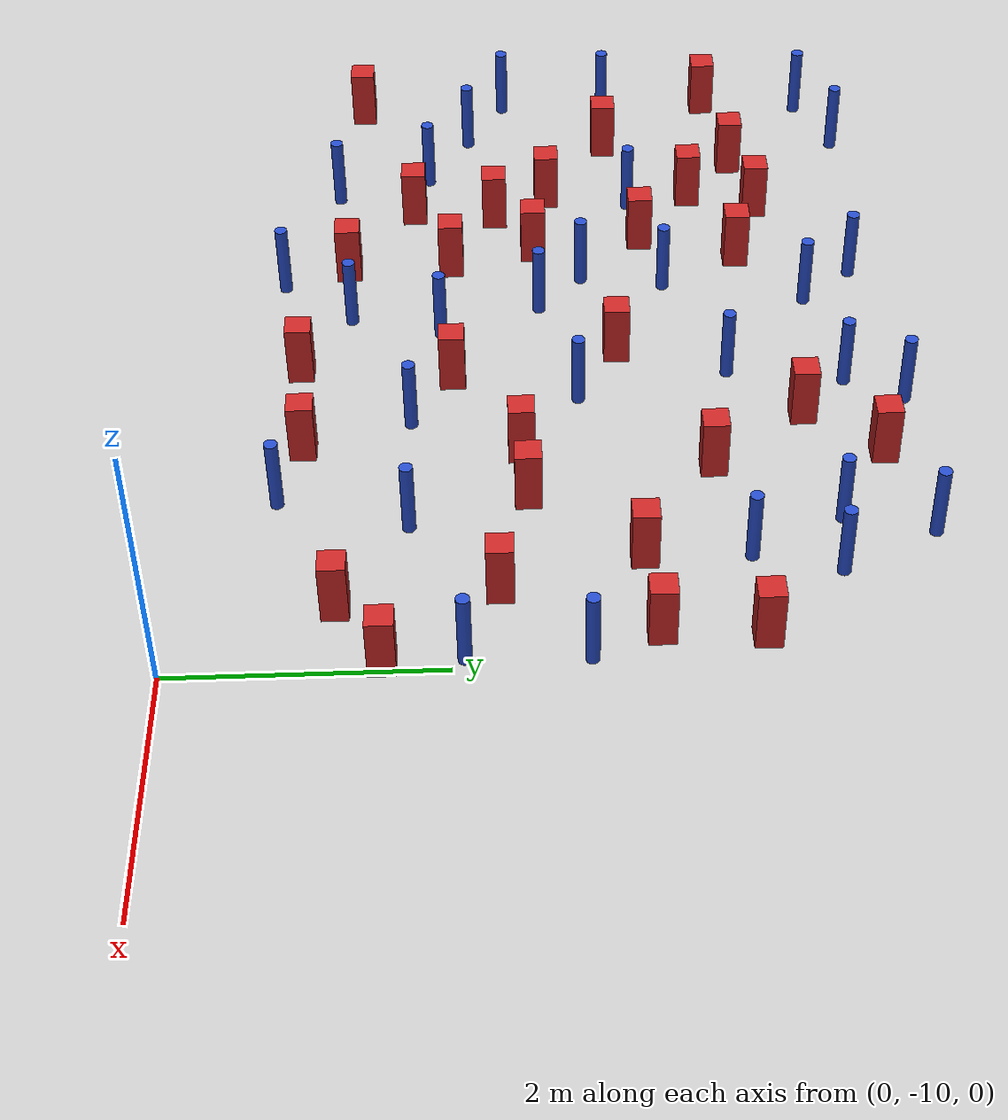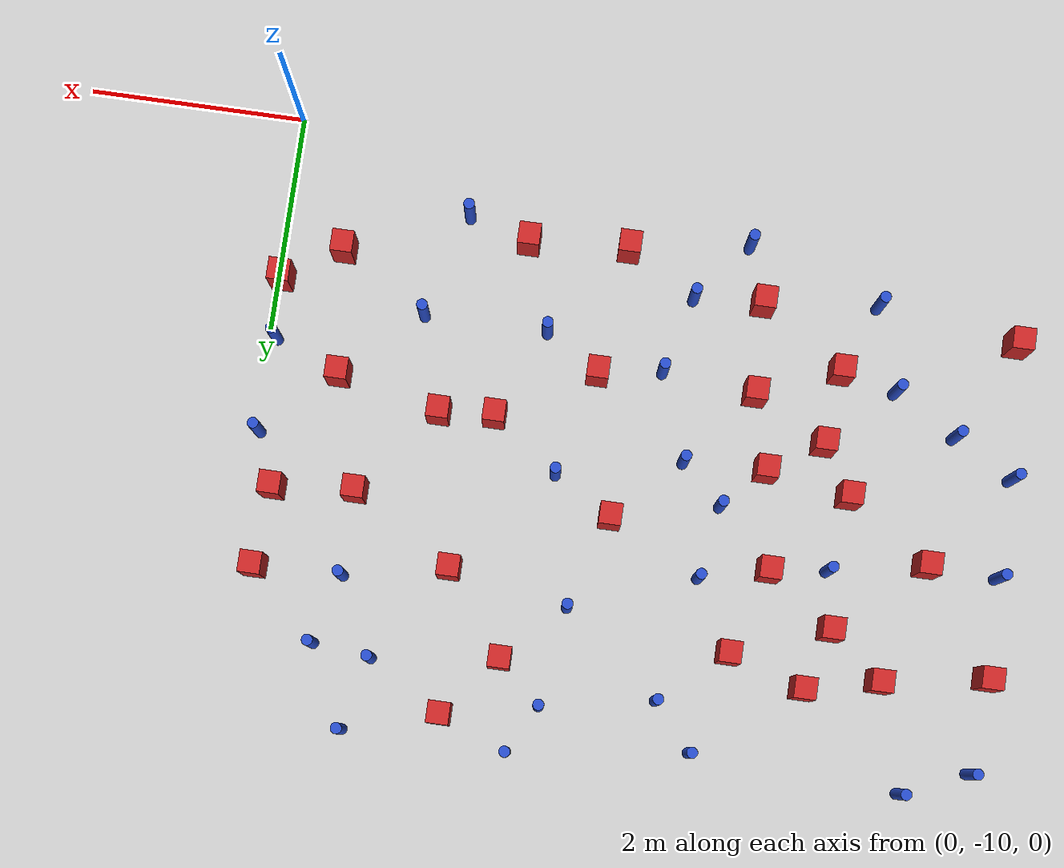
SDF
<sdf version="1.6">
 <world name="default">
  <model name="ground_plane">
   <static>1</static>
   <link name="link">
    <collision name="collision">
     <geometry><plane><normal>0 0 1</normal><size>100 100</size></plane></geometry>
     <surface><friction><ode><mu>100</mu><mu2>50</mu2></ode></friction></surface>
    </collision>
    <visual name="visual">
     <cast_shadows>0</cast_shadows>
     <geometry><plane><normal>0 0 1</normal><size>100 100</size></plane></geometry>
     <material>
      <ambient>1.0 1.0 1.0 1.0</ambient>
      <diffuse>0.8 0.8 0.8 1.0</diffuse>
      <specular>0.01 0.01 0.01 1.000000</specular>
     </material>
    </visual>
   </link>
  </model>
  <model name="square_post_obstacle4">
   <static>true</static>
   <pose>-4.4408581253 -8.84156580716 -6.11067671241e-07 -5.50515727128e-06 -8.79689657224e-07 2.37013304536e-05</pose>
   <link name="link">
    <pose>0 0 0.25 0 -0 0</pose>
    <inertial>
     <mass>100</mass>
     <inertia>
      <ixx>0.166667</ixx>
      <ixy>0</ixy>
      <ixz>0</ixz>
      <iyy>0.166667</iyy>
      <iyz>0</iyz>
      <izz>0.166667</izz>
     </inertia>
    </inertial>
    <collision name="collision"><geometry><box><size>.2 .2 .5</size></box></geometry></collision>
    <visual name="visual">
     <geometry><box><size>.2 .2 .5</size></box></geometry>
     <material>
      <script><name>Gazebo/Red</name><uri>file://media/materials/scripts/gazebo.material</uri></script>
     </material>
    </visual>
   </link>
  </model>
  <model name="pole_obstacle6">
   <static>true</static>
   <pose>-2.67955490322 -4.49456968489 -9.47619616065e-06 5.49618799738e-07 2.3631041406e-07 -1.55090534801e-07</pose>
   <link name="link">
    <pose>0 0 0.3 0 -0 0</pose>
    <inertial>
     <mass>1</mass>
     <inertia><ixx>0.145833</ixx><ixy>0</ixy><ixz>0</ixz><iyy>0.145833</iyy><iyz>0</iyz><izz>0.125</izz></inertia>
    </inertial>
    <collision name="collision">
     <geometry><cylinder><radius>0.05</radius><length>.6</length></cylinder></geometry>
    </collision>
    <visual name="visual">
     <geometry><cylinder><radius>0.05</radius><length>.6</length></cylinder></geometry>
     <material>
      <script><name>Gazebo/Blue</name><uri>file://media/materials/scripts/gazebo.material</uri></script>
     </material>
    </visual>
   </link>
  </model>
  <model name="square_post_obstacle14">
   <static>true</static>
   <pose>-5.88535612797 -5.571079546 -6.11067671241e-07 -5.50515727128e-06 -8.79689657224e-07 2.37013304536e-05</pose>
   <link name="link">
    <pose>0 0 0.25 0 -0 0</pose>
    <inertial>
     <mass>100</mass>
     <inertia>
      <ixx>0.166667</ixx>
      <ixy>0</ixy>
      <ixz>0</ixz>
      <iyy>0.166667</iyy>
      <iyz>0</iyz>
      <izz>0.166667</izz>
     </inertia>
    </inertial>
    <collision name="collision"><geometry><box><size>.2 .2 .5</size></box></geometry></collision>
    <visual name="visual">
     <geometry><box><size>.2 .2 .5</size></box></geometry>
     <material>
      <script><name>Gazebo/Red</name><uri>file://media/materials/scripts/gazebo.material</uri></script>
     </material>
    </visual>
   </link>
  </model>
  <model name="square_post_obstacle16">
   <static>true</static>
   <pose>-4.52722977021 -5.63745665215 -6.11067671241e-07 -5.50515727128e-06 -8.79689657224e-07 2.37013304536e-05</pose>
   <link name="link">
    <pose>0 0 0.25 0 -0 0</pose>
    <inertial>
     <mass>100</mass>
     <inertia>
      <ixx>0.166667</ixx>
      <ixy>0</ixy>
      <ixz>0</ixz>
      <iyy>0.166667</iyy>
      <iyz>0</iyz>
      <izz>0.166667</izz>
     </inertia>
    </inertial>
    <collision name="collision"><geometry><box><size>.2 .2 .5</size></box></geometry></collision>
    <visual name="visual">
     <geometry><box><size>.2 .2 .5</size></box></geometry>
     <material>
      <script><name>Gazebo/Red</name><uri>file://media/materials/scripts/gazebo.material</uri></script>
     </material>
    </visual>
   </link>
  </model>
  <model name="square_post_obstacle21">
   <static>true</static>
   <pose>-0.0513197047499 -8.47438045316 -6.11067671241e-07 -5.50515727128e-06 -8.79689657224e-07 2.37013304536e-05</pose>
   <link name="link">
    <pose>0 0 0.25 0 -0 0</pose>
    <inertial>
     <mass>100</mass>
     <inertia>
      <ixx>0.166667</ixx>
      <ixy>0</ixy>
      <ixz>0</ixz>
      <iyy>0.166667</iyy>
      <iyz>0</iyz>
      <izz>0.166667</izz>
     </inertia>
    </inertial>
    <collision name="collision"><geometry><box><size>.2 .2 .5</size></box></geometry></collision>
    <visual name="visual">
     <geometry><box><size>.2 .2 .5</size></box></geometry>
     <material>
      <script><name>Gazebo/Red</name><uri>file://media/materials/scripts/gazebo.material</uri></script>
     </material>
    </visual>
   </link>
  </model>
  <model name="square_post_obstacle22">
   <static>true</static>
   <pose>-5.42596364143 -7.18494212022 -6.11067671241e-07 -5.50515727128e-06 -8.79689657224e-07 2.37013304536e-05</pose>
   <link name="link">
    <pose>0 0 0.25 0 -0 0</pose>
    <inertial>
     <mass>100</mass>
     <inertia>
      <ixx>0.166667</ixx>
      <ixy>0</ixy>
      <ixz>0</ixz>
      <iyy>0.166667</iyy>
      <iyz>0</iyz>
      <izz>0.166667</izz>
     </inertia>
    </inertial>
    <collision name="collision"><geometry><box><size>.2 .2 .5</size></box></geometry></collision>
    <visual name="visual">
     <geometry><box><size>.2 .2 .5</size></box></geometry>
     <material>
      <script><name>Gazebo/Red</name><uri>file://media/materials/scripts/gazebo.material</uri></script>
     </material>
    </visual>
   </link>
  </model>
  <model name="pole_obstacle19">
   <static>true</static>
   <pose>-3.90889676823 -7.29016949241 -9.4761961606e-06 5.49618799729e-07 2.36310414006e-07 -1.55090534822e-07</pose>
   <link name="link">
    <pose>0 0 0.3 0 -0 0</pose>
    <inertial>
     <mass>1</mass>
     <inertia><ixx>0.145833</ixx><ixy>0</ixy><ixz>0</ixz><iyy>0.145833</iyy><iyz>0</iyz><izz>0.125</izz></inertia>
    </inertial>
    <collision name="collision">
     <geometry><cylinder><radius>0.05</radius><length>.6</length></cylinder></geometry>
    </collision>
    <visual name="visual">
     <geometry><cylinder><radius>0.05</radius><length>.6</length></cylinder></geometry>
     <material>
      <script><name>Gazebo/Blue</name><uri>file://media/materials/scripts/gazebo.material</uri></script>
     </material>
    </visual>
   </link>
  </model>
  <model name="pole_obstacle21">
   <static>true</static>
   <pose>-0.0601522836397 -7.04055698694 -9.47619616065e-06 5.49618799737e-07 2.36310414066e-07 -1.55090534798e-07</pose>
   <link name="link">
    <pose>0 0 0.3 0 -0 0</pose>
    <inertial>
     <mass>1</mass>
     <inertia><ixx>0.145833</ixx><ixy>0</ixy><ixz>0</ixz><iyy>0.145833</iyy><iyz>0</iyz><izz>0.125</izz></inertia>
    </inertial>
    <collision name="collision">
     <geometry><cylinder><radius>0.05</radius><length>.6</length></cylinder></geometry>
    </collision>
    <visual name="visual">
     <geometry><cylinder><radius>0.05</radius><length>.6</length></cylinder></geometry>
     <material>
      <script><name>Gazebo/Blue</name><uri>file://media/materials/scripts/gazebo.material</uri></script>
     </material>
    </visual>
   </link>
  </model>
  <model name="square_post_obstacle31">
   <static>true</static>
   <pose>-1.01146927889 -6.62315300815 -6.11067671241e-07 -5.50515727128e-06 -8.79689657224e-07 2.37013304536e-05</pose>
   <link name="link">
    <pose>0 0 0.25 0 -0 0</pose>
    <inertial>
     <mass>100</mass>
     <inertia>
      <ixx>0.166667</ixx>
      <ixy>0</ixy>
      <ixz>0</ixz>
      <iyy>0.166667</iyy>
      <iyz>0</iyz>
      <izz>0.166667</izz>
     </inertia>
    </inertial>
    <collision name="collision"><geometry><box><size>.2 .2 .5</size></box></geometry></collision>
    <visual name="visual">
     <geometry><box><size>.2 .2 .5</size></box></geometry>
     <material>
      <script><name>Gazebo/Red</name><uri>file://media/materials/scripts/gazebo.material</uri></script>
     </material>
    </visual>
   </link>
  </model>
  <model name="pole_obstacle23">
   <static>true</static>
   <pose>-1.20102629949 -4.48960846109 -9.47619616065e-06 5.49618799737e-07 2.36310414061e-07 -1.550905348e-07</pose>
   <link name="link">
    <pose>0 0 0.3 0 -0 0</pose>
    <inertial>
     <mass>1</mass>
     <inertia><ixx>0.145833</ixx><ixy>0</ixy><ixz>0</ixz><iyy>0.145833</iyy><iyz>0</iyz><izz>0.125</izz></inertia>
    </inertial>
    <collision name="collision">
     <geometry><cylinder><radius>0.05</radius><length>.6</length></cylinder></geometry>
    </collision>
    <visual name="visual">
     <geometry><cylinder><radius>0.05</radius><length>.6</length></cylinder></geometry>
     <material>
      <script><name>Gazebo/Blue</name><uri>file://media/materials/scripts/gazebo.material</uri></script>
     </material>
    </visual>
   </link>
  </model>
  <model name="pole_obstacle27">
   <static>true</static>
   <pose>-2.77676857767 -7.02044497975 -9.47619616065e-06 5.49618799738e-07 2.3631041406e-07 -1.55090534801e-07</pose>
   <link name="link">
    <pose>0 0 0.3 0 -0 0</pose>
    <inertial>
     <mass>1</mass>
     <inertia><ixx>0.145833</ixx><ixy>0</ixy><ixz>0</ixz><iyy>0.145833</iyy><iyz>0</iyz><izz>0.125</izz></inertia>
    </inertial>
    <collision name="collision">
     <geometry><cylinder><radius>0.05</radius><length>.6</length></cylinder></geometry>
    </collision>
    <visual name="visual">
     <geometry><cylinder><radius>0.05</radius><length>.6</length></cylinder></geometry>
     <material>
      <script><name>Gazebo/Blue</name><uri>file://media/materials/scripts/gazebo.material</uri></script>
     </material>
    </visual>
   </link>
  </model>
  <model name="square_post_obstacle33">
   <static>true</static>
   <pose>-2.5166524858 -5.30925155005 -6.11067671241e-07 -5.50515727128e-06 -8.79689657224e-07 2.37013304536e-05</pose>
   <link name="link">
    <pose>0 0 0.25 0 -0 0</pose>
    <inertial>
     <mass>100</mass>
     <inertia>
      <ixx>0.166667</ixx>
      <ixy>0</ixy>
      <ixz>0</ixz>
      <iyy>0.166667</iyy>
      <iyz>0</iyz>
      <izz>0.166667</izz>
     </inertia>
    </inertial>
    <collision name="collision"><geometry><box><size>.2 .2 .5</size></box></geometry></collision>
    <visual name="visual">
     <geometry><box><size>.2 .2 .5</size></box></geometry>
     <material>
      <script><name>Gazebo/Red</name><uri>file://media/materials/scripts/gazebo.material</uri></script>
     </material>
    </visual>
   </link>
  </model>
  <model name="pole_obstacle28">
   <static>true</static>
   <pose>-4.1765174504 -6.26733281353 -9.47619616065e-06 5.49618799737e-07 2.36310414037e-07 -1.55090534814e-07</pose>
   <link name="link">
    <pose>0 0 0.3 0 -0 0</pose>
    <inertial>
     <mass>1</mass>
     <inertia><ixx>0.145833</ixx><ixy>0</ixy><ixz>0</ixz><iyy>0.145833</iyy><iyz>0</iyz><izz>0.125</izz></inertia>
    </inertial>
    <collision name="collision">
     <geometry><cylinder><radius>0.05</radius><length>.6</length></cylinder></geometry>
    </collision>
    <visual name="visual">
     <geometry><cylinder><radius>0.05</radius><length>.6</length></cylinder></geometry>
     <material>
      <script><name>Gazebo/Blue</name><uri>file://media/materials/scripts/gazebo.material</uri></script>
     </material>
    </visual>
   </link>
  </model>
  <model name="pole_obstacle33">
   <static>true</static>
   <pose>-1.67365708923 -9.28265290325 -9.47619616065e-06 5.49618799737e-07 2.36310414046e-07 -1.55090534809e-07</pose>
   <link name="link">
    <pose>0 0 0.3 0 -0 0</pose>
    <inertial>
     <mass>1</mass>
     <inertia><ixx>0.145833</ixx><ixy>0</ixy><ixz>0</ixz><iyy>0.145833</iyy><iyz>0</iyz><izz>0.125</izz></inertia>
    </inertial>
    <collision name="collision">
     <geometry><cylinder><radius>0.05</radius><length>.6</length></cylinder></geometry>
    </collision>
    <visual name="visual">
     <geometry><cylinder><radius>0.05</radius><length>.6</length></cylinder></geometry>
     <material>
      <script><name>Gazebo/Blue</name><uri>file://media/materials/scripts/gazebo.material</uri></script>
     </material>
    </visual>
   </link>
  </model>
  <model name="square_post_obstacle46">
   <static>true</static>
   <pose>-4.65389310707 -7.3189717062 -6.11067671241e-07 -5.50515727128e-06 -8.79689657224e-07 2.37013304536e-05</pose>
   <link name="link">
    <pose>0 0 0.25 0 -0 0</pose>
    <inertial>
     <mass>100</mass>
     <inertia>
      <ixx>0.166667</ixx>
      <ixy>0</ixy>
      <ixz>0</ixz>
      <iyy>0.166667</iyy>
      <iyz>0</iyz>
      <izz>0.166667</izz>
     </inertia>
    </inertial>
    <collision name="collision"><geometry><box><size>.2 .2 .5</size></box></geometry></collision>
    <visual name="visual">
     <geometry><box><size>.2 .2 .5</size></box></geometry>
     <material>
      <script><name>Gazebo/Red</name><uri>file://media/materials/scripts/gazebo.material</uri></script>
     </material>
    </visual>
   </link>
  </model>
  <model name="pole_obstacle50">
   <static>true</static>
   <pose>-4.25979556159 -9.36015682866 -9.47619616065e-06 5.49618799737e-07 2.36310414065e-07 -1.55090534796e-07</pose>
   <link name="link">
    <pose>0 0 0.3 0 -0 0</pose>
    <inertial>
     <mass>1</mass>
     <inertia><ixx>0.145833</ixx><ixy>0</ixy><ixz>0</ixz><iyy>0.145833</iyy><iyz>0</iyz><izz>0.125</izz></inertia>
    </inertial>
    <collision name="collision">
     <geometry><cylinder><radius>0.05</radius><length>.6</length></cylinder></geometry>
    </collision>
    <visual name="visual">
     <geometry><cylinder><radius>0.05</radius><length>.6</length></cylinder></geometry>
     <material>
      <script><name>Gazebo/Blue</name><uri>file://media/materials/scripts/gazebo.material</uri></script>
     </material>
    </visual>
   </link>
  </model>
  <model name="pole_obstacle55">
   <static>true</static>
   <pose>-0.832284787329 -5.21192028402 -9.47619616065e-06 5.49618799737e-07 2.36310414065e-07 -1.55090534796e-07</pose>
   <link name="link">
    <pose>0 0 0.3 0 -0 0</pose>
    <inertial>
     <mass>1</mass>
     <inertia><ixx>0.145833</ixx><ixy>0</ixy><ixz>0</ixz><iyy>0.145833</iyy><iyz>0</iyz><izz>0.125</izz></inertia>
    </inertial>
    <collision name="collision">
     <geometry><cylinder><radius>0.05</radius><length>.6</length></cylinder></geometry>
    </collision>
    <visual name="visual">
     <geometry><cylinder><radius>0.05</radius><length>.6</length></cylinder></geometry>
     <material>
      <script><name>Gazebo/Blue</name><uri>file://media/materials/scripts/gazebo.material</uri></script>
     </material>
    </visual>
   </link>
  </model>
  <model name="square_post_obstacle62">
   <static>true</static>
   <pose>-0.269841916395 -6.55339594717 -6.11067671241e-07 -5.50515727128e-06 -8.79689657224e-07 2.37013304536e-05</pose>
   <link name="link">
    <pose>0 0 0.25 0 -0 0</pose>
    <inertial>
     <mass>100</mass>
     <inertia>
      <ixx>0.166667</ixx>
      <ixy>0</ixy>
      <ixz>0</ixz>
      <iyy>0.166667</iyy>
      <iyz>0</iyz>
      <izz>0.166667</izz>
     </inertia>
    </inertial>
    <collision name="collision"><geometry><box><size>.2 .2 .5</size></box></geometry></collision>
    <visual name="visual">
     <geometry><box><size>.2 .2 .5</size></box></geometry>
     <material>
      <script><name>Gazebo/Red</name><uri>file://media/materials/scripts/gazebo.material</uri></script>
     </material>
    </visual>
   </link>
  </model>
  <model name="pole_obstacle61">
   <static>true</static>
   <pose>-6.17942670913 -4.61508812357 -9.47619616065e-06 5.49618799737e-07 2.36310414037e-07 -1.55090534814e-07</pose>
   <link name="link">
    <pose>0 0 0.3 0 -0 0</pose>
    <inertial>
     <mass>1</mass>
     <inertia><ixx>0.145833</ixx><ixy>0</ixy><ixz>0</ixz><iyy>0.145833</iyy><iyz>0</iyz><izz>0.125</izz></inertia>
    </inertial>
    <collision name="collision">
     <geometry><cylinder><radius>0.05</radius><length>.6</length></cylinder></geometry>
    </collision>
    <visual name="visual">
     <geometry><cylinder><radius>0.05</radius><length>.6</length></cylinder></geometry>
     <material>
      <script><name>Gazebo/Blue</name><uri>file://media/materials/scripts/gazebo.material</uri></script>
     </material>
    </visual>
   </link>
  </model>
  <model name="square_post_obstacle72">
   <static>true</static>
   <pose>-0.703870365918 -7.65818401443 -6.11067671241e-07 -5.50515727128e-06 -8.79689657224e-07 2.37013304536e-05</pose>
   <link name="link">
    <pose>0 0 0.25 0 -0 0</pose>
    <inertial>
     <mass>100</mass>
     <inertia>
      <ixx>0.166667</ixx>
      <ixy>0</ixy>
      <ixz>0</ixz>
      <iyy>0.166667</iyy>
      <iyz>0</iyz>
      <izz>0.166667</izz>
     </inertia>
    </inertial>
    <collision name="collision"><geometry><box><size>.2 .2 .5</size></box></geometry></collision>
    <visual name="visual">
     <geometry><box><size>.2 .2 .5</size></box></geometry>
     <material>
      <script><name>Gazebo/Red</name><uri>file://media/materials/scripts/gazebo.material</uri></script>
     </material>
    </visual>
   </link>
  </model>
  <model name="square_post_obstacle74">
   <static>true</static>
   <pose>-5.14427647453 -7.63259534214 -6.11067671241e-07 -5.50515727128e-06 -8.79689657224e-07 2.37013304536e-05</pose>
   <link name="link">
    <pose>0 0 0.25 0 -0 0</pose>
    <inertial>
     <mass>100</mass>
     <inertia>
      <ixx>0.166667</ixx>
      <ixy>0</ixy>
      <ixz>0</ixz>
      <iyy>0.166667</iyy>
      <iyz>0</iyz>
      <izz>0.166667</izz>
     </inertia>
    </inertial>
    <collision name="collision"><geometry><box><size>.2 .2 .5</size></box></geometry></collision>
    <visual name="visual">
     <geometry><box><size>.2 .2 .5</size></box></geometry>
     <material>
      <script><name>Gazebo/Red</name><uri>file://media/materials/scripts/gazebo.material</uri></script>
     </material>
    </visual>
   </link>
  </model>
  <model name="square_post_obstacle75">
   <static>true</static>
   <pose>-5.40465982271 -5.9715297687 -6.11067671241e-07 -5.50515727128e-06 -8.79689657224e-07 2.37013304536e-05</pose>
   <link name="link">
    <pose>0 0 0.25 0 -0 0</pose>
    <inertial>
     <mass>100</mass>
     <inertia>
      <ixx>0.166667</ixx>
      <ixy>0</ixy>
      <ixz>0</ixz>
      <iyy>0.166667</iyy>
      <iyz>0</iyz>
      <izz>0.166667</izz>
     </inertia>
    </inertial>
    <collision name="collision"><geometry><box><size>.2 .2 .5</size></box></geometry></collision>
    <visual name="visual">
     <geometry><box><size>.2 .2 .5</size></box></geometry>
     <material>
      <script><name>Gazebo/Red</name><uri>file://media/materials/scripts/gazebo.material</uri></script>
     </material>
    </visual>
   </link>
  </model>
  <model name="pole_obstacle85">
   <static>true</static>
   <pose>-2.52640666816 -8.30897808544 -9.4761961606e-06 5.49618799729e-07 2.36310414e-07 -1.55090534824e-07</pose>
   <link name="link">
    <pose>0 0 0.3 0 -0 0</pose>
    <inertial>
     <mass>1</mass>
     <inertia><ixx>0.145833</ixx><ixy>0</ixy><ixz>0</ixz><iyy>0.145833</iyy><iyz>0</iyz><izz>0.125</izz></inertia>
    </inertial>
    <collision name="collision">
     <geometry><cylinder><radius>0.05</radius><length>.6</length></cylinder></geometry>
    </collision>
    <visual name="visual">
     <geometry><cylinder><radius>0.05</radius><length>.6</length></cylinder></geometry>
     <material>
      <script><name>Gazebo/Blue</name><uri>file://media/materials/scripts/gazebo.material</uri></script>
     </material>
    </visual>
   </link>
  </model>
  <model name="pole_obstacle98">
   <static>true</static>
   <pose>-3.80880611524 -8.80124516872 -9.4761961606e-06 5.49618799729e-07 2.36310414e-07 -1.55090534824e-07</pose>
   <link name="link">
    <pose>0 0 0.3 0 -0 0</pose>
    <inertial>
     <mass>1</mass>
     <inertia><ixx>0.145833</ixx><ixy>0</ixy><ixz>0</ixz><iyy>0.145833</iyy><iyz>0</iyz><izz>0.125</izz></inertia>
    </inertial>
    <collision name="collision">
     <geometry><cylinder><radius>0.05</radius><length>.6</length></cylinder></geometry>
    </collision>
    <visual name="visual">
     <geometry><cylinder><radius>0.05</radius><length>.6</length></cylinder></geometry>
     <material>
      <script><name>Gazebo/Blue</name><uri>file://media/materials/scripts/gazebo.material</uri></script>
     </material>
    </visual>
   </link>
  </model>
  <model name="pole_obstacle101">
   <static>true</static>
   <pose>-4.28880469781 -6.93603033495 -9.47619616065e-06 5.49618799737e-07 2.36310414037e-07 -1.55090534814e-07</pose>
   <link name="link">
    <pose>0 0 0.3 0 -0 0</pose>
    <inertial>
     <mass>1</mass>
     <inertia><ixx>0.145833</ixx><ixy>0</ixy><ixz>0</ixz><iyy>0.145833</iyy><iyz>0</iyz><izz>0.125</izz></inertia>
    </inertial>
    <collision name="collision">
     <geometry><cylinder><radius>0.05</radius><length>.6</length></cylinder></geometry>
    </collision>
    <visual name="visual">
     <geometry><cylinder><radius>0.05</radius><length>.6</length></cylinder></geometry>
     <material>
      <script><name>Gazebo/Blue</name><uri>file://media/materials/scripts/gazebo.material</uri></script>
     </material>
    </visual>
   </link>
  </model>
  <model name="pole_obstacle102">
   <static>true</static>
   <pose>-6.83635259554 -6.63700029474 -9.47619616065e-06 5.49618799737e-07 2.36310414037e-07 -1.55090534814e-07</pose>
   <link name="link">
    <pose>0 0 0.3 0 -0 0</pose>
    <inertial>
     <mass>1</mass>
     <inertia><ixx>0.145833</ixx><ixy>0</ixy><ixz>0</ixz><iyy>0.145833</iyy><iyz>0</iyz><izz>0.125</izz></inertia>
    </inertial>
    <collision name="collision">
     <geometry><cylinder><radius>0.05</radius><length>.6</length></cylinder></geometry>
    </collision>
    <visual name="visual">
     <geometry><cylinder><radius>0.05</radius><length>.6</length></cylinder></geometry>
     <material>
      <script><name>Gazebo/Blue</name><uri>file://media/materials/scripts/gazebo.material</uri></script>
     </material>
    </visual>
   </link>
  </model>
  <model name="square_post_obstacle93">
   <static>true</static>
   <pose>-6.18807808393 -6.65989734605 -6.11067671241e-07 -5.50515727128e-06 -8.79689657224e-07 2.37013304536e-05</pose>
   <link name="link">
    <pose>0 0 0.25 0 -0 0</pose>
    <inertial>
     <mass>100</mass>
     <inertia>
      <ixx>0.166667</ixx>
      <ixy>0</ixy>
      <ixz>0</ixz>
      <iyy>0.166667</iyy>
      <iyz>0</iyz>
      <izz>0.166667</izz>
     </inertia>
    </inertial>
    <collision name="collision"><geometry><box><size>.2 .2 .5</size></box></geometry></collision>
    <visual name="visual">
     <geometry><box><size>.2 .2 .5</size></box></geometry>
     <material>
      <script><name>Gazebo/Red</name><uri>file://media/materials/scripts/gazebo.material</uri></script>
     </material>
    </visual>
   </link>
  </model>
  <model name="pole_obstacle110">
   <static>true</static>
   <pose>-2.91531553997 -4.93623394803 -9.47619616065e-06 5.49618799738e-07 2.3631041406e-07 -1.55090534801e-07</pose>
   <link name="link">
    <pose>0 0 0.3 0 -0 0</pose>
    <inertial>
     <mass>1</mass>
     <inertia><ixx>0.145833</ixx><ixy>0</ixy><ixz>0</ixz><iyy>0.145833</iyy><iyz>0</iyz><izz>0.125</izz></inertia>
    </inertial>
    <collision name="collision">
     <geometry><cylinder><radius>0.05</radius><length>.6</length></cylinder></geometry>
    </collision>
    <visual name="visual">
     <geometry><cylinder><radius>0.05</radius><length>.6</length></cylinder></geometry>
     <material>
      <script><name>Gazebo/Blue</name><uri>file://media/materials/scripts/gazebo.material</uri></script>
     </material>
    </visual>
   </link>
  </model>
  <model name="pole_obstacle111">
   <static>true</static>
   <pose>-6.7754824339 -4.87405614877 -9.47619616065e-06 5.49618799737e-07 2.36310414037e-07 -1.55090534814e-07</pose>
   <link name="link">
    <pose>0 0 0.3 0 -0 0</pose>
    <inertial>
     <mass>1</mass>
     <inertia><ixx>0.145833</ixx><ixy>0</ixy><ixz>0</ixz><iyy>0.145833</iyy><iyz>0</iyz><izz>0.125</izz></inertia>
    </inertial>
    <collision name="collision">
     <geometry><cylinder><radius>0.05</radius><length>.6</length></cylinder></geometry>
    </collision>
    <visual name="visual">
     <geometry><cylinder><radius>0.05</radius><length>.6</length></cylinder></geometry>
     <material>
      <script><name>Gazebo/Blue</name><uri>file://media/materials/scripts/gazebo.material</uri></script>
     </material>
    </visual>
   </link>
  </model>
  <model name="square_post_obstacle106">
   <static>true</static>
   <pose>-5.21875782973 -8.30982218391 -6.11067671241e-07 -5.50515727128e-06 -8.79689657224e-07 2.37013304536e-05</pose>
   <link name="link">
    <pose>0 0 0.25 0 -0 0</pose>
    <inertial>
     <mass>100</mass>
     <inertia>
      <ixx>0.166667</ixx>
      <ixy>0</ixy>
      <ixz>0</ixz>
      <iyy>0.166667</iyy>
      <iyz>0</iyz>
      <izz>0.166667</izz>
     </inertia>
    </inertial>
    <collision name="collision"><geometry><box><size>.2 .2 .5</size></box></geometry></collision>
    <visual name="visual">
     <geometry><box><size>.2 .2 .5</size></box></geometry>
     <material>
      <script><name>Gazebo/Red</name><uri>file://media/materials/scripts/gazebo.material</uri></script>
     </material>
    </visual>
   </link>
  </model>
  <model name="pole_obstacle124">
   <static>true</static>
   <pose>-3.61601790829 -8.08594814212 -9.4761961606e-06 5.49618799729e-07 2.36310414e-07 -1.55090534824e-07</pose>
   <link name="link">
    <pose>0 0 0.3 0 -0 0</pose>
    <inertial>
     <mass>1</mass>
     <inertia><ixx>0.145833</ixx><ixy>0</ixy><ixz>0</ixz><iyy>0.145833</iyy><iyz>0</iyz><izz>0.125</izz></inertia>
    </inertial>
    <collision name="collision">
     <geometry><cylinder><radius>0.05</radius><length>.6</length></cylinder></geometry>
    </collision>
    <visual name="visual">
     <geometry><cylinder><radius>0.05</radius><length>.6</length></cylinder></geometry>
     <material>
      <script><name>Gazebo/Blue</name><uri>file://media/materials/scripts/gazebo.material</uri></script>
     </material>
    </visual>
   </link>
  </model>
  <model name="square_post_obstacle115">
   <static>true</static>
   <pose>-3.31815270171 -6.69855162655 -6.11067671241e-07 -5.50515727128e-06 -8.79689657224e-07 2.37013304536e-05</pose>
   <link name="link">
    <pose>0 0 0.25 0 -0 0</pose>
    <inertial>
     <mass>100</mass>
     <inertia>
      <ixx>0.166667</ixx>
      <ixy>0</ixy>
      <ixz>0</ixz>
      <iyy>0.166667</iyy>
      <iyz>0</iyz>
      <izz>0.166667</izz>
     </inertia>
    </inertial>
    <collision name="collision"><geometry><box><size>.2 .2 .5</size></box></geometry></collision>
    <visual name="visual">
     <geometry><box><size>.2 .2 .5</size></box></geometry>
     <material>
      <script><name>Gazebo/Red</name><uri>file://media/materials/scripts/gazebo.material</uri></script>
     </material>
    </visual>
   </link>
  </model>
  <model name="square_post_obstacle117">
   <static>true</static>
   <pose>-1.95355732147 -6.04505276363 -6.11067671241e-07 -5.50515727128e-06 -8.79689657224e-07 2.37013304536e-05</pose>
   <link name="link">
    <pose>0 0 0.25 0 -0 0</pose>
    <inertial>
     <mass>100</mass>
     <inertia>
      <ixx>0.166667</ixx>
      <ixy>0</ixy>
      <ixz>0</ixz>
      <iyy>0.166667</iyy>
      <iyz>0</iyz>
      <izz>0.166667</izz>
     </inertia>
    </inertial>
    <collision name="collision"><geometry><box><size>.2 .2 .5</size></box></geometry></collision>
    <visual name="visual">
     <geometry><box><size>.2 .2 .5</size></box></geometry>
     <material>
      <script><name>Gazebo/Red</name><uri>file://media/materials/scripts/gazebo.material</uri></script>
     </material>
    </visual>
   </link>
  </model>
  <model name="square_post_obstacle119">
   <static>true</static>
   <pose>-0.579380560979 -8.8120978194 -6.11067671241e-07 -5.50515727128e-06 -8.79689657224e-07 2.37013304536e-05</pose>
   <link name="link">
    <pose>0 0 0.25 0 -0 0</pose>
    <inertial>
     <mass>100</mass>
     <inertia>
      <ixx>0.166667</ixx>
      <ixy>0</ixy>
      <ixz>0</ixz>
      <iyy>0.166667</iyy>
      <iyz>0</iyz>
      <izz>0.166667</izz>
     </inertia>
    </inertial>
    <collision name="collision"><geometry><box><size>.2 .2 .5</size></box></geometry></collision>
    <visual name="visual">
     <geometry><box><size>.2 .2 .5</size></box></geometry>
     <material>
      <script><name>Gazebo/Red</name><uri>file://media/materials/scripts/gazebo.material</uri></script>
     </material>
    </visual>
   </link>
  </model>
  <model name="pole_obstacle140">
   <static>true</static>
   <pose>-5.73524257838 -8.19065914762 -9.47619616065e-06 5.49618799737e-07 2.36310414065e-07 -1.55090534796e-07</pose>
   <link name="link">
    <pose>0 0 0.3 0 -0 0</pose>
    <inertial>
     <mass>1</mass>
     <inertia><ixx>0.145833</ixx><ixy>0</ixy><ixz>0</ixz><iyy>0.145833</iyy><iyz>0</iyz><izz>0.125</izz></inertia>
    </inertial>
    <collision name="collision">
     <geometry><cylinder><radius>0.05</radius><length>.6</length></cylinder></geometry>
    </collision>
    <visual name="visual">
     <geometry><cylinder><radius>0.05</radius><length>.6</length></cylinder></geometry>
     <material>
      <script><name>Gazebo/Blue</name><uri>file://media/materials/scripts/gazebo.material</uri></script>
     </material>
    </visual>
   </link>
  </model>
  <model name="square_post_obstacle129">
   <static>true</static>
   <pose>-0.212694065094 -5.82650270698 -6.11067671241e-07 -5.50515727128e-06 -8.79689657224e-07 2.37013304536e-05</pose>
   <link name="link">
    <pose>0 0 0.25 0 -0 0</pose>
    <inertial>
     <mass>100</mass>
     <inertia>
      <ixx>0.166667</ixx>
      <ixy>0</ixy>
      <ixz>0</ixz>
      <iyy>0.166667</iyy>
      <iyz>0</iyz>
      <izz>0.166667</izz>
     </inertia>
    </inertial>
    <collision name="collision"><geometry><box><size>.2 .2 .5</size></box></geometry></collision>
    <visual name="visual">
     <geometry><box><size>.2 .2 .5</size></box></geometry>
     <material>
      <script><name>Gazebo/Red</name><uri>file://media/materials/scripts/gazebo.material</uri></script>
     </material>
    </visual>
   </link>
  </model>
  <model name="pole_obstacle144">
   <static>true</static>
   <pose>-5.31743206474 -6.49148543004 -9.47619616065e-06 5.49618799737e-07 2.36310414037e-07 -1.55090534814e-07</pose>
   <link name="link">
    <pose>0 0 0.3 0 -0 0</pose>
    <inertial>
     <mass>1</mass>
     <inertia><ixx>0.145833</ixx><ixy>0</ixy><ixz>0</ixz><iyy>0.145833</iyy><iyz>0</iyz><izz>0.125</izz></inertia>
    </inertial>
    <collision name="collision">
     <geometry><cylinder><radius>0.05</radius><length>.6</length></cylinder></geometry>
    </collision>
    <visual name="visual">
     <geometry><cylinder><radius>0.05</radius><length>.6</length></cylinder></geometry>
     <material>
      <script><name>Gazebo/Blue</name><uri>file://media/materials/scripts/gazebo.material</uri></script>
     </material>
    </visual>
   </link>
  </model>
  <model name="pole_obstacle148">
   <static>true</static>
   <pose>-1.36721866772 -5.15079703997 -9.47619616065e-06 5.49618799737e-07 2.36310414061e-07 -1.550905348e-07</pose>
   <link name="link">
    <pose>0 0 0.3 0 -0 0</pose>
    <inertial>
     <mass>1</mass>
     <inertia><ixx>0.145833</ixx><ixy>0</ixy><ixz>0</ixz><iyy>0.145833</iyy><iyz>0</iyz><izz>0.125</izz></inertia>
    </inertial>
    <collision name="collision">
     <geometry><cylinder><radius>0.05</radius><length>.6</length></cylinder></geometry>
    </collision>
    <visual name="visual">
     <geometry><cylinder><radius>0.05</radius><length>.6</length></cylinder></geometry>
     <material>
      <script><name>Gazebo/Blue</name><uri>file://media/materials/scripts/gazebo.material</uri></script>
     </material>
    </visual>
   </link>
  </model>
  <model name="square_post_obstacle141">
   <static>true</static>
   <pose>-6.84152704229 -5.72727500708 -6.11067671241e-07 -5.50515727128e-06 -8.79689657224e-07 2.37013304536e-05</pose>
   <link name="link">
    <pose>0 0 0.25 0 -0 0</pose>
    <inertial>
     <mass>100</mass>
     <inertia>
      <ixx>0.166667</ixx>
      <ixy>0</ixy>
      <ixz>0</ixz>
      <iyy>0.166667</iyy>
      <iyz>0</iyz>
      <izz>0.166667</izz>
     </inertia>
    </inertial>
    <collision name="collision"><geometry><box><size>.2 .2 .5</size></box></geometry></collision>
    <visual name="visual">
     <geometry><box><size>.2 .2 .5</size></box></geometry>
     <material>
      <script><name>Gazebo/Red</name><uri>file://media/materials/scripts/gazebo.material</uri></script>
     </material>
    </visual>
   </link>
  </model>
  <model name="square_post_obstacle142">
   <static>true</static>
   <pose>-3.03092015715 -7.99157231874 -6.11067671241e-07 -5.50515727128e-06 -8.79689657224e-07 2.37013304536e-05</pose>
   <link name="link">
    <pose>0 0 0.25 0 -0 0</pose>
    <inertial>
     <mass>100</mass>
     <inertia>
      <ixx>0.166667</ixx>
      <ixy>0</ixy>
      <ixz>0</ixz>
      <iyy>0.166667</iyy>
      <iyz>0</iyz>
      <izz>0.166667</izz>
     </inertia>
    </inertial>
    <collision name="collision"><geometry><box><size>.2 .2 .5</size></box></geometry></collision>
    <visual name="visual">
     <geometry><box><size>.2 .2 .5</size></box></geometry>
     <material>
      <script><name>Gazebo/Red</name><uri>file://media/materials/scripts/gazebo.material</uri></script>
     </material>
    </visual>
   </link>
  </model>
  <model name="square_post_obstacle151">
   <static>true</static>
   <pose>-6.78082529154 -8.78248307788 -6.11067671241e-07 -5.50515727128e-06 -8.79689657224e-07 2.37013304536e-05</pose>
   <link name="link">
    <pose>0 0 0.25 0 -0 0</pose>
    <inertial>
     <mass>100</mass>
     <inertia>
      <ixx>0.166667</ixx>
      <ixy>0</ixy>
      <ixz>0</ixz>
      <iyy>0.166667</iyy>
      <iyz>0</iyz>
      <izz>0.166667</izz>
     </inertia>
    </inertial>
    <collision name="collision"><geometry><box><size>.2 .2 .5</size></box></geometry></collision>
    <visual name="visual">
     <geometry><box><size>.2 .2 .5</size></box></geometry>
     <material>
      <script><name>Gazebo/Red</name><uri>file://media/materials/scripts/gazebo.material</uri></script>
     </material>
    </visual>
   </link>
  </model>
  <model name="pole_obstacle160">
   <static>true</static>
   <pose>-6.31175610056 -7.85072446253 -9.47619616065e-06 5.49618799737e-07 2.36310414037e-07 -1.55090534814e-07</pose>
   <link name="link">
    <pose>0 0 0.3 0 -0 0</pose>
    <inertial>
     <mass>1</mass>
     <inertia><ixx>0.145833</ixx><ixy>0</ixy><ixz>0</ixz><iyy>0.145833</iyy><iyz>0</iyz><izz>0.125</izz></inertia>
    </inertial>
    <collision name="collision">
     <geometry><cylinder><radius>0.05</radius><length>.6</length></cylinder></geometry>
    </collision>
    <visual name="visual">
     <geometry><cylinder><radius>0.05</radius><length>.6</length></cylinder></geometry>
     <material>
      <script><name>Gazebo/Blue</name><uri>file://media/materials/scripts/gazebo.material</uri></script>
     </material>
    </visual>
   </link>
  </model>
  <model name="pole_obstacle168">
   <static>true</static>
   <pose>-1.00596784346 -5.8490968877 -9.47619616065e-06 5.49618799737e-07 2.36310414062e-07 -1.55090534799e-07</pose>
   <link name="link">
    <pose>0 0 0.3 0 -0 0</pose>
    <inertial>
     <mass>1</mass>
     <inertia><ixx>0.145833</ixx><ixy>0</ixy><ixz>0</ixz><iyy>0.145833</iyy><iyz>0</iyz><izz>0.125</izz></inertia>
    </inertial>
    <collision name="collision">
     <geometry><cylinder><radius>0.05</radius><length>.6</length></cylinder></geometry>
    </collision>
    <visual name="visual">
     <geometry><cylinder><radius>0.05</radius><length>.6</length></cylinder></geometry>
     <material>
      <script><name>Gazebo/Blue</name><uri>file://media/materials/scripts/gazebo.material</uri></script>
     </material>
    </visual>
   </link>
  </model>
  <model name="square_post_obstacle161">
   <static>true</static>
   <pose>-3.16361224905 -9.17549666968 -6.11067671241e-07 -5.50515727128e-06 -8.79689657224e-07 2.37013304536e-05</pose>
   <link name="link">
    <pose>0 0 0.25 0 -0 0</pose>
    <inertial>
     <mass>100</mass>
     <inertia>
      <ixx>0.166667</ixx>
      <ixy>0</ixy>
      <ixz>0</ixz>
      <iyy>0.166667</iyy>
      <iyz>0</iyz>
      <izz>0.166667</izz>
     </inertia>
    </inertial>
    <collision name="collision"><geometry><box><size>.2 .2 .5</size></box></geometry></collision>
    <visual name="visual">
     <geometry><box><size>.2 .2 .5</size></box></geometry>
     <material>
      <script><name>Gazebo/Red</name><uri>file://media/materials/scripts/gazebo.material</uri></script>
     </material>
    </visual>
   </link>
  </model>
  <model name="square_post_obstacle163">
   <static>true</static>
   <pose>-2.24591360398 -9.11635994704 -6.11067671241e-07 -5.50515727128e-06 -8.79689657224e-07 2.37013304536e-05</pose>
   <link name="link">
    <pose>0 0 0.25 0 -0 0</pose>
    <inertial>
     <mass>100</mass>
     <inertia>
      <ixx>0.166667</ixx>
      <ixy>0</ixy>
      <ixz>0</ixz>
      <iyy>0.166667</iyy>
      <iyz>0</iyz>
      <izz>0.166667</izz>
     </inertia>
    </inertial>
    <collision name="collision"><geometry><box><size>.2 .2 .5</size></box></geometry></collision>
    <visual name="visual">
     <geometry><box><size>.2 .2 .5</size></box></geometry>
     <material>
      <script><name>Gazebo/Red</name><uri>file://media/materials/scripts/gazebo.material</uri></script>
     </material>
    </visual>
   </link>
  </model>
  <model name="square_post_obstacle164">
   <static>true</static>
   <pose>-4.47081921834 -8.0002686002 -6.11067671241e-07 -5.50515727128e-06 -8.79689657224e-07 2.37013304536e-05</pose>
   <link name="link">
    <pose>0 0 0.25 0 -0 0</pose>
    <inertial>
     <mass>100</mass>
     <inertia>
      <ixx>0.166667</ixx>
      <ixy>0</ixy>
      <ixz>0</ixz>
      <iyy>0.166667</iyy>
      <iyz>0</iyz>
      <izz>0.166667</izz>
     </inertia>
    </inertial>
    <collision name="collision"><geometry><box><size>.2 .2 .5</size></box></geometry></collision>
    <visual name="visual">
     <geometry><box><size>.2 .2 .5</size></box></geometry>
     <material>
      <script><name>Gazebo/Red</name><uri>file://media/materials/scripts/gazebo.material</uri></script>
     </material>
    </visual>
   </link>
  </model>
  <model name="square_post_obstacle166">
   <static>true</static>
   <pose>-5.21804955925 -5.41485486444 -6.11067671241e-07 -5.50515727128e-06 -8.79689657224e-07 2.37013304536e-05</pose>
   <link name="link">
    <pose>0 0 0.25 0 -0 0</pose>
    <inertial>
     <mass>100</mass>
     <inertia>
      <ixx>0.166667</ixx>
      <ixy>0</ixy>
      <ixz>0</ixz>
      <iyy>0.166667</iyy>
      <iyz>0</iyz>
      <izz>0.166667</izz>
     </inertia>
    </inertial>
    <collision name="collision"><geometry><box><size>.2 .2 .5</size></box></geometry></collision>
    <visual name="visual">
     <geometry><box><size>.2 .2 .5</size></box></geometry>
     <material>
      <script><name>Gazebo/Red</name><uri>file://media/materials/scripts/gazebo.material</uri></script>
     </material>
    </visual>
   </link>
  </model>
  <model name="pole_obstacle184">
   <static>true</static>
   <pose>-3.94323009033 -5.12871154239 -9.47619616065e-06 5.49618799738e-07 2.3631041406e-07 -1.55090534801e-07</pose>
   <link name="link">
    <pose>0 0 0.3 0 -0 0</pose>
    <inertial>
     <mass>1</mass>
     <inertia><ixx>0.145833</ixx><ixy>0</ixy><ixz>0</ixz><iyy>0.145833</iyy><iyz>0</iyz><izz>0.125</izz></inertia>
    </inertial>
    <collision name="collision">
     <geometry><cylinder><radius>0.05</radius><length>.6</length></cylinder></geometry>
    </collision>
    <visual name="visual">
     <geometry><cylinder><radius>0.05</radius><length>.6</length></cylinder></geometry>
     <material>
      <script><name>Gazebo/Blue</name><uri>file://media/materials/scripts/gazebo.material</uri></script>
     </material>
    </visual>
   </link>
  </model>
  <model name="square_post_obstacle178">
   <static>true</static>
   <pose>-2.16033849403 -7.47417277478 -6.11067671241e-07 -5.50515727128e-06 -8.79689657224e-07 2.37013304536e-05</pose>
   <link name="link">
    <pose>0 0 0.25 0 -0 0</pose>
    <inertial>
     <mass>100</mass>
     <inertia>
      <ixx>0.166667</ixx>
      <ixy>0</ixy>
      <ixz>0</ixz>
      <iyy>0.166667</iyy>
      <iyz>0</iyz>
      <izz>0.166667</izz>
     </inertia>
    </inertial>
    <collision name="collision"><geometry><box><size>.2 .2 .5</size></box></geometry></collision>
    <visual name="visual">
     <geometry><box><size>.2 .2 .5</size></box></geometry>
     <material>
      <script><name>Gazebo/Red</name><uri>file://media/materials/scripts/gazebo.material</uri></script>
     </material>
    </visual>
   </link>
  </model>
  <model name="square_post_obstacle190">
   <static>true</static>
   <pose>-2.05452793323 -4.74964222203 -6.11067671241e-07 -5.50515727128e-06 -8.79689657224e-07 2.37013304536e-05</pose>
   <link name="link">
    <pose>0 0 0.25 0 -0 0</pose>
    <inertial>
     <mass>100</mass>
     <inertia>
      <ixx>0.166667</ixx>
      <ixy>0</ixy>
      <ixz>0</ixz>
      <iyy>0.166667</iyy>
      <iyz>0</iyz>
      <izz>0.166667</izz>
     </inertia>
    </inertial>
    <collision name="collision"><geometry><box><size>.2 .2 .5</size></box></geometry></collision>
    <visual name="visual">
     <geometry><box><size>.2 .2 .5</size></box></geometry>
     <material>
      <script><name>Gazebo/Red</name><uri>file://media/materials/scripts/gazebo.material</uri></script>
     </material>
    </visual>
   </link>
  </model>
  <model name="pole_obstacle188">
   <static>true</static>
   <pose>-0.0835085688499 -7.91173487354 -9.47619616065e-06 5.49618799737e-07 2.36310414062e-07 -1.550905348e-07</pose>
   <link name="link">
    <pose>0 0 0.3 0 -0 0</pose>
    <inertial>
     <mass>1</mass>
     <inertia><ixx>0.145833</ixx><ixy>0</ixy><ixz>0</ixz><iyy>0.145833</iyy><iyz>0</iyz><izz>0.125</izz></inertia>
    </inertial>
    <collision name="collision">
     <geometry><cylinder><radius>0.05</radius><length>.6</length></cylinder></geometry>
    </collision>
    <visual name="visual">
     <geometry><cylinder><radius>0.05</radius><length>.6</length></cylinder></geometry>
     <material>
      <script><name>Gazebo/Blue</name><uri>file://media/materials/scripts/gazebo.material</uri></script>
     </material>
    </visual>
   </link>
  </model>
  <model name="pole_obstacle189">
   <static>true</static>
   <pose>-4.29615867325 -4.71247164296 -9.47619616065e-06 5.49618799737e-07 2.36310414037e-07 -1.55090534814e-07</pose>
   <link name="link">
    <pose>0 0 0.3 0 -0 0</pose>
    <inertial>
     <mass>1</mass>
     <inertia><ixx>0.145833</ixx><ixy>0</ixy><ixz>0</ixz><iyy>0.145833</iyy><iyz>0</iyz><izz>0.125</izz></inertia>
    </inertial>
    <collision name="collision">
     <geometry><cylinder><radius>0.05</radius><length>.6</length></cylinder></geometry>
    </collision>
    <visual name="visual">
     <geometry><cylinder><radius>0.05</radius><length>.6</length></cylinder></geometry>
     <material>
      <script><name>Gazebo/Blue</name><uri>file://media/materials/scripts/gazebo.material</uri></script>
     </material>
    </visual>
   </link>
  </model>
  <model name="pole_obstacle206">
   <static>true</static>
   <pose>-6.86088282983 -7.54033301159 -9.47619616065e-06 5.49618799737e-07 2.36310414037e-07 -1.55090534814e-07</pose>
   <link name="link">
    <pose>0 0 0.3 0 -0 0</pose>
    <inertial>
     <mass>1</mass>
     <inertia><ixx>0.145833</ixx><ixy>0</ixy><ixz>0</ixz><iyy>0.145833</iyy><iyz>0</iyz><izz>0.125</izz></inertia>
    </inertial>
    <collision name="collision">
     <geometry><cylinder><radius>0.05</radius><length>.6</length></cylinder></geometry>
    </collision>
    <visual name="visual">
     <geometry><cylinder><radius>0.05</radius><length>.6</length></cylinder></geometry>
     <material>
      <script><name>Gazebo/Blue</name><uri>file://media/materials/scripts/gazebo.material</uri></script>
     </material>
    </visual>
   </link>
  </model>
  <model name="pole_obstacle212">
   <static>true</static>
   <pose>-1.38913057903 -8.30991144382 -9.47619616065e-06 5.49618799737e-07 2.36310414046e-07 -1.55090534809e-07</pose>
   <link name="link">
    <pose>0 0 0.3 0 -0 0</pose>
    <inertial>
     <mass>1</mass>
     <inertia><ixx>0.145833</ixx><ixy>0</ixy><ixz>0</ixz><iyy>0.145833</iyy><iyz>0</iyz><izz>0.125</izz></inertia>
    </inertial>
    <collision name="collision">
     <geometry><cylinder><radius>0.05</radius><length>.6</length></cylinder></geometry>
    </collision>
    <visual name="visual">
     <geometry><cylinder><radius>0.05</radius><length>.6</length></cylinder></geometry>
     <material>
      <script><name>Gazebo/Blue</name><uri>file://media/materials/scripts/gazebo.material</uri></script>
     </material>
    </visual>
   </link>
  </model>
  <model name="pole_obstacle214">
   <static>true</static>
   <pose>-3.04645043714 -5.84256851352 -9.4761961606e-06 5.49618799729e-07 2.36310414006e-07 -1.55090534822e-07</pose>
   <link name="link">
    <pose>0 0 0.3 0 -0 0</pose>
    <inertial>
     <mass>1</mass>
     <inertia><ixx>0.145833</ixx><ixy>0</ixy><ixz>0</ixz><iyy>0.145833</iyy><iyz>0</iyz><izz>0.125</izz></inertia>
    </inertial>
    <collision name="collision">
     <geometry><cylinder><radius>0.05</radius><length>.6</length></cylinder></geometry>
    </collision>
    <visual name="visual">
     <geometry><cylinder><radius>0.05</radius><length>.6</length></cylinder></geometry>
     <material>
      <script><name>Gazebo/Blue</name><uri>file://media/materials/scripts/gazebo.material</uri></script>
     </material>
    </visual>
   </link>
  </model>
  <model name="pole_obstacle218">
   <static>true</static>
   <pose>-5.49024989578 -8.95726519778 -9.47619616065e-06 5.49618799737e-07 2.36310414065e-07 -1.55090534796e-07</pose>
   <link name="link">
    <pose>0 0 0.3 0 -0 0</pose>
    <inertial>
     <mass>1</mass>
     <inertia><ixx>0.145833</ixx><ixy>0</ixy><ixz>0</ixz><iyy>0.145833</iyy><iyz>0</iyz><izz>0.125</izz></inertia>
    </inertial>
    <collision name="collision">
     <geometry><cylinder><radius>0.05</radius><length>.6</length></cylinder></geometry>
    </collision>
    <visual name="visual">
     <geometry><cylinder><radius>0.05</radius><length>.6</length></cylinder></geometry>
     <material>
      <script><name>Gazebo/Blue</name><uri>file://media/materials/scripts/gazebo.material</uri></script>
     </material>
    </visual>
   </link>
  </model>
  <model name="square_post_obstacle205">
   <static>true</static>
   <pose>-1.65551494603 -7.43565326623 -6.11067671241e-07 -5.50515727128e-06 -8.79689657224e-07 2.37013304536e-05</pose>
   <link name="link">
    <pose>0 0 0.25 0 -0 0</pose>
    <inertial>
     <mass>100</mass>
     <inertia>
      <ixx>0.166667</ixx>
      <ixy>0</ixy>
      <ixz>0</ixz>
      <iyy>0.166667</iyy>
      <iyz>0</iyz>
      <izz>0.166667</izz>
     </inertia>
    </inertial>
    <collision name="collision"><geometry><box><size>.2 .2 .5</size></box></geometry></collision>
    <visual name="visual">
     <geometry><box><size>.2 .2 .5</size></box></geometry>
     <material>
      <script><name>Gazebo/Red</name><uri>file://media/materials/scripts/gazebo.material</uri></script>
     </material>
    </visual>
   </link>
  </model>
  <model name="square_post_obstacle216">
   <static>true</static>
   <pose>-4.79214611328 -6.42293118825 -6.11067671241e-07 -5.50515727128e-06 -8.79689657224e-07 2.37013304536e-05</pose>
   <link name="link">
    <pose>0 0 0.25 0 -0 0</pose>
    <inertial>
     <mass>100</mass>
     <inertia>
      <ixx>0.166667</ixx>
      <ixy>0</ixy>
      <ixz>0</ixz>
      <iyy>0.166667</iyy>
      <iyz>0</iyz>
      <izz>0.166667</izz>
     </inertia>
    </inertial>
    <collision name="collision"><geometry><box><size>.2 .2 .5</size></box></geometry></collision>
    <visual name="visual">
     <geometry><box><size>.2 .2 .5</size></box></geometry>
     <material>
      <script><name>Gazebo/Red</name><uri>file://media/materials/scripts/gazebo.material</uri></script>
     </material>
    </visual>
   </link>
  </model>
 </world>
</sdf>
